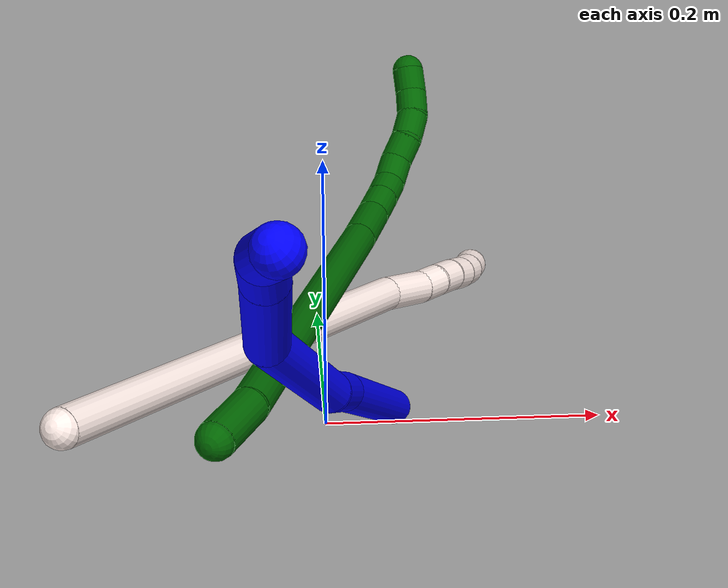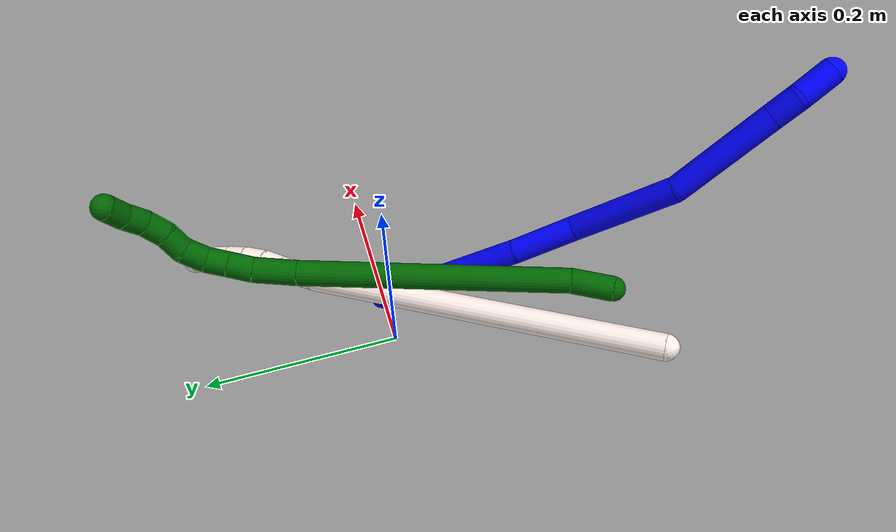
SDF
<sdf version="1.7">
 <world name="default">
  <model name="photoneo_s_sensor">
   <static>1</static>
   <pose>0 0 2 1.57079 1.57079 3.14159</pose>
   <link name="link">
    <inertial><mass>0.1</mass></inertial>
    <sensor name="sensor" type="depth">
     <update_rate>30</update_rate>
     <camera>
      <horizontal_fov>1.22</horizontal_fov>
      <image><width>1920</width><height>1200</height><format>B8G8R8</format></image>
      <clip><near>0.1</near><far>4</far></clip>
      <depth_camera><output>points</output></depth_camera>
     </camera>
     <plugin name="camera_plugin" filename="libgazebo_ros_depth_camera.so">
      <baseline>0.2</baseline>
      <alwaysOn>1</alwaysOn>
      <updateRate>0.0</updateRate>
      <cameraName>camera_ir</cameraName>
      <imageTopicName>/camera/color/image_raw</imageTopicName>
      <cameraInfoTopicName>/camera/color/camera_info</cameraInfoTopicName>
      <depthImageTopicName>/camera/depth/image_raw</depthImageTopicName>
      <depthImageCameraInfoTopicName>/camera/depth/camera_info</depthImageCameraInfoTopicName>
      <pointCloudTopicName>/camera/depth/points</pointCloudTopicName>
      <frameName>fr_optical</frameName>
      <pointCloudCutoff>0.1</pointCloudCutoff>
      <pointCloudCutoffMax>2.0</pointCloudCutoffMax>
      <distortionK1>0</distortionK1>
      <distortionK2>0</distortionK2>
      <distortionK3>0</distortionK3>
      <distortionT1>0</distortionT1>
      <distortionT2>0</distortionT2>
      <CxPrime>0</CxPrime>
      <Cx>0</Cx>
      <Cy>0</Cy>
      <focalLength>0</focalLength>
      <hackBaseline>0</hackBaseline>
     </plugin>
    </sensor>
   </link>
  </model>
  <model name="bin">
   <static>1</static>
   <link name="bottom">
    <collision name="collision-bottom">
     <pose>0 0 -0.01 0 -0 0</pose>
     <geometry><box><size>0.8 0.6 0.02</size></box></geometry>
     <surface>
      <friction><ode><mu>100</mu><mu2>100</mu2></ode></friction>
      <contact><collide_bitmask>65535</collide_bitmask></contact>
     </surface>
    </collision>
   </link>
   <link name="west_wall">
    <collision name="collision-west_wall">
     <pose>-0.41 0 0.1 0 -0 0</pose>
     <geometry><box><size>0.02 0.6 0.2</size></box></geometry>
     <surface>
      <friction><ode><mu>100</mu><mu2>100</mu2></ode></friction>
      <contact><collide_bitmask>65535</collide_bitmask></contact>
     </surface>
    </collision>
   </link>
   <link name="east_wall">
    <collision name="collision-east_wall">
     <pose>0.41 0 0.1 0 -0 0</pose>
     <geometry><box><size>0.02 0.6 0.2</size></box></geometry>
     <surface>
      <friction><ode><mu>100</mu><mu2>100</mu2></ode></friction>
      <contact><collide_bitmask>65535</collide_bitmask></contact>
     </surface>
    </collision>
   </link>
   <link name="south_wall">
    <collision name="collision-south_wall">
     <pose>0 -0.31 0.1 0 -0 0</pose>
     <geometry><box><size>0.8 0.02 0.2</size></box></geometry>
     <surface>
      <friction><ode><mu>100</mu><mu2>100</mu2></ode></friction>
      <contact><collide_bitmask>65535</collide_bitmask></contact>
     </surface>
    </collision>
   </link>
   <link name="north_wall">
    <collision name="collision-north_wall">
     <pose>0 0.31 0.1 0 -0 0</pose>
     <geometry><box><size>0.8 0.02 0.2</size></box></geometry>
     <surface>
      <friction><ode><mu>100</mu><mu2>100</mu2></ode></friction>
      <contact><collide_bitmask>65535</collide_bitmask></contact>
     </surface>
    </collision>
   </link>
  </model>
  <model name="1">
   <static>0</static>
   <link name="1">
    <collision name="collision-cylinder-e_1_1_4">
     <pose>-0.00431 -0.025804 0.076562 0.325081 -0.053291 -0.008741</pose>
     <geometry><cylinder><radius>0.0125</radius><length>0.161817</length></cylinder></geometry>
     <surface>
      <friction><ode><mu>1.16</mu><mu2>1.16</mu2><slip1>0</slip1><slip2>0</slip2></ode></friction>
      <contact><ode><kp>1e+06</kp><kd>1</kd><max_vel>0</max_vel><min_depth>0.001</min_depth></ode></contact>
     </surface>
    </collision>
    <visual name="visual-cylinder-e_1_1_4">
     <pose>-0.00431 -0.025804 0.076562 0.325081 -0.053291 -0.008741</pose>
     <geometry><cylinder><radius>0.0125</radius><length>0.161817</length></cylinder></geometry>
     <material><ambient>0 0 1 1</ambient></material>
    </visual>
    <collision name="collision-cylinder-e_2_4_5">
     <pose>-0.008699 -0.065296 0.182455 0.436613 -0.002466 -0.000547</pose>
     <geometry><cylinder><radius>0.0125</radius><length>0.064734</length></cylinder></geometry>
     <surface>
      <friction><ode><mu>1.16</mu><mu2>1.16</mu2><slip1>0</slip1><slip2>0</slip2></ode></friction>
      <contact><ode><kp>1e+06</kp><kd>1</kd><max_vel>0</max_vel><min_depth>0.001</min_depth></ode></contact>
     </surface>
    </collision>
    <visual name="visual-cylinder-e_2_4_5">
     <pose>-0.008699 -0.065296 0.182455 0.436613 -0.002466 -0.000547</pose>
     <geometry><cylinder><radius>0.0125</radius><length>0.064734</length></cylinder></geometry>
     <material><ambient>0 0 1 1</ambient></material>
    </visual>
    <collision name="collision-cylinder-e_3_5_6">
     <pose>-0.010651 -0.087103 0.265995 0.14868 -0.034134 -0.002542</pose>
     <geometry><cylinder><radius>0.0125</radius><length>0.109693</length></cylinder></geometry>
     <surface>
      <friction><ode><mu>1.16</mu><mu2>1.16</mu2><slip1>0</slip1><slip2>0</slip2></ode></friction>
      <contact><ode><kp>1e+06</kp><kd>1</kd><max_vel>0</max_vel><min_depth>0.001</min_depth></ode></contact>
     </surface>
    </collision>
    <visual name="visual-cylinder-e_3_5_6">
     <pose>-0.010651 -0.087103 0.265995 0.14868 -0.034134 -0.002542</pose>
     <geometry><cylinder><radius>0.0125</radius><length>0.109693</length></cylinder></geometry>
     <material><ambient>0 0 1 1</ambient></material>
    </visual>
    <collision name="collision-cylinder-e_4_6_7">
     <pose>0.000958 -0.109818 0.36773 0.297973 0.264778 0.039971</pose>
     <geometry><cylinder><radius>0.0125</radius><length>0.103022</length></cylinder></geometry>
     <surface>
      <friction><ode><mu>1.16</mu><mu2>1.16</mu2><slip1>0</slip1><slip2>0</slip2></ode></friction>
      <contact><ode><kp>1e+06</kp><kd>1</kd><max_vel>0</max_vel><min_depth>0.001</min_depth></ode></contact>
     </surface>
    </collision>
    <visual name="visual-cylinder-e_4_6_7">
     <pose>0.000958 -0.109818 0.36773 0.297973 0.264778 0.039971</pose>
     <geometry><cylinder><radius>0.0125</radius><length>0.103022</length></cylinder></geometry>
     <material><ambient>0 0 1 1</ambient></material>
    </visual>
    <collision name="collision-cylinder-e_5_7_8">
     <pose>0.017662 -0.127468 0.427609 0.24238 0.248125 0.030372</pose>
     <geometry><cylinder><radius>0.0125</radius><length>0.026255</length></cylinder></geometry>
     <surface>
      <friction><ode><mu>1.16</mu><mu2>1.16</mu2><slip1>0</slip1><slip2>0</slip2></ode></friction>
      <contact><ode><kp>1e+06</kp><kd>1</kd><max_vel>0</max_vel><min_depth>0.001</min_depth></ode></contact>
     </surface>
    </collision>
    <visual name="visual-cylinder-e_5_7_8">
     <pose>0.017662 -0.127468 0.427609 0.24238 0.248125 0.030372</pose>
     <geometry><cylinder><radius>0.0125</radius><length>0.026255</length></cylinder></geometry>
     <material><ambient>0 0 1 1</ambient></material>
    </visual>
    <collision name="collision-cylinder-e_6_8_2">
     <pose>0.02616 -0.140049 0.453328 0.619227 0.310947 0.100198</pose>
     <geometry><cylinder><radius>0.0125</radius><length>0.034478</length></cylinder></geometry>
     <surface>
      <friction><ode><mu>1.16</mu><mu2>1.16</mu2><slip1>0</slip1><slip2>0</slip2></ode></friction>
      <contact><ode><kp>1e+06</kp><kd>1</kd><max_vel>0</max_vel><min_depth>0.001</min_depth></ode></contact>
     </surface>
    </collision>
    <visual name="visual-cylinder-e_6_8_2">
     <pose>0.02616 -0.140049 0.453328 0.619227 0.310947 0.100198</pose>
     <geometry><cylinder><radius>0.0125</radius><length>0.034478</length></cylinder></geometry>
     <material><ambient>0 0 1 1</ambient></material>
    </visual>
    <collision name="collision-sphere-2">
     <pose>0.031435 -0.149574 0.466693 0 -0 0</pose>
     <geometry><sphere><radius>0.0125</radius></sphere></geometry>
     <surface>
      <friction><ode><mu>1.16</mu><mu2>1.16</mu2><slip1>0</slip1><slip2>0</slip2></ode></friction>
      <contact><ode><kp>1e+06</kp><kd>1</kd><max_vel>0</max_vel><min_depth>0.001</min_depth></ode></contact>
     </surface>
    </collision>
    <visual name="visual-sphere-2">
     <pose>0.031435 -0.149574 0.466693 0 -0 0</pose>
     <geometry><sphere><radius>0.0125</radius></sphere></geometry>
     <material><ambient>0 0 1 1</ambient></material>
    </visual>
    <collision name="collision-sphere-4">
     <pose>-0.008619 -0.051609 0.153124 0 -0 0</pose>
     <geometry><sphere><radius>0.0125</radius></sphere></geometry>
     <surface>
      <friction><ode><mu>1.16</mu><mu2>1.16</mu2><slip1>0</slip1><slip2>0</slip2></ode></friction>
      <contact><ode><kp>1e+06</kp><kd>1</kd><max_vel>0</max_vel><min_depth>0.001</min_depth></ode></contact>
     </surface>
    </collision>
    <visual name="visual-sphere-4">
     <pose>-0.008619 -0.051609 0.153124 0 -0 0</pose>
     <geometry><sphere><radius>0.0125</radius></sphere></geometry>
     <material><ambient>0 0 1 1</ambient></material>
    </visual>
    <collision name="collision-sphere-1">
     <geometry><sphere><radius>0.0125</radius></sphere></geometry>
     <surface>
      <friction><ode><mu>1.16</mu><mu2>1.16</mu2><slip1>0</slip1><slip2>0</slip2></ode></friction>
      <contact><ode><kp>1e+06</kp><kd>1</kd><max_vel>0</max_vel><min_depth>0.001</min_depth></ode></contact>
     </surface>
    </collision>
    <visual name="visual-sphere-1">
     <geometry><sphere><radius>0.0125</radius></sphere></geometry>
     <material><ambient>0 0 1 1</ambient></material>
    </visual>
    <collision name="collision-sphere-8">
     <pose>0.020886 -0.130523 0.439962 0 -0 0</pose>
     <geometry><sphere><radius>0.0125</radius></sphere></geometry>
     <surface>
      <friction><ode><mu>1.16</mu><mu2>1.16</mu2><slip1>0</slip1><slip2>0</slip2></ode></friction>
      <contact><ode><kp>1e+06</kp><kd>1</kd><max_vel>0</max_vel><min_depth>0.001</min_depth></ode></contact>
     </surface>
    </collision>
    <visual name="visual-sphere-8">
     <pose>0.020886 -0.130523 0.439962 0 -0 0</pose>
     <geometry><sphere><radius>0.0125</radius></sphere></geometry>
     <material><ambient>0 0 1 1</ambient></material>
    </visual>
    <collision name="collision-sphere-5">
     <pose>-0.008779 -0.078983 0.211785 0 -0 0</pose>
     <geometry><sphere><radius>0.0125</radius></sphere></geometry>
     <surface>
      <friction><ode><mu>1.16</mu><mu2>1.16</mu2><slip1>0</slip1><slip2>0</slip2></ode></friction>
      <contact><ode><kp>1e+06</kp><kd>1</kd><max_vel>0</max_vel><min_depth>0.001</min_depth></ode></contact>
     </surface>
    </collision>
    <visual name="visual-sphere-5">
     <pose>-0.008779 -0.078983 0.211785 0 -0 0</pose>
     <geometry><sphere><radius>0.0125</radius></sphere></geometry>
     <material><ambient>0 0 1 1</ambient></material>
    </visual>
    <collision name="collision-sphere-6">
     <pose>-0.012523 -0.095222 0.320205 0 -0 0</pose>
     <geometry><sphere><radius>0.0125</radius></sphere></geometry>
     <surface>
      <friction><ode><mu>1.16</mu><mu2>1.16</mu2><slip1>0</slip1><slip2>0</slip2></ode></friction>
      <contact><ode><kp>1e+06</kp><kd>1</kd><max_vel>0</max_vel><min_depth>0.001</min_depth></ode></contact>
     </surface>
    </collision>
    <visual name="visual-sphere-6">
     <pose>-0.012523 -0.095222 0.320205 0 -0 0</pose>
     <geometry><sphere><radius>0.0125</radius></sphere></geometry>
     <material><ambient>0 0 1 1</ambient></material>
    </visual>
    <collision name="collision-sphere-7">
     <pose>0.014438 -0.124414 0.415255 0 -0 0</pose>
     <geometry><sphere><radius>0.0125</radius></sphere></geometry>
     <surface>
      <friction><ode><mu>1.16</mu><mu2>1.16</mu2><slip1>0</slip1><slip2>0</slip2></ode></friction>
      <contact><ode><kp>1e+06</kp><kd>1</kd><max_vel>0</max_vel><min_depth>0.001</min_depth></ode></contact>
     </surface>
    </collision>
    <visual name="visual-sphere-7">
     <pose>0.014438 -0.124414 0.415255 0 -0 0</pose>
     <geometry><sphere><radius>0.0125</radius></sphere></geometry>
     <material><ambient>0 0 1 1</ambient></material>
    </visual>
    <inertial>
     <pose>-0.001929 -0.074892 0.236239 0 -0 0</pose>
     <mass>0.5</mass>
     <inertia><ixx>0.0006</ixx><ixy>0</ixy><ixz>0</ixz><iyy>0.000563</iyy><iyz>0</iyz><izz>0.000205</izz></inertia>
    </inertial>
   </link>
   <pose>0.049012 0.001497 0.011442 0.593682 -0.531475 0.116836</pose>
  </model>
  <model name="6">
   <static>0</static>
   <link name="6">
    <collision name="collision-cylinder-e_1_1_4">
     <pose>-0.001852 -0.000443 0.020782 0.02132 -0.088876 -0.000948</pose>
     <geometry><cylinder><radius>0.0125</radius><length>0.041738</length></cylinder></geometry>
     <surface>
      <friction><ode><mu>1.16</mu><mu2>1.16</mu2><slip1>0</slip1><slip2>0</slip2></ode></friction>
      <contact><ode><kp>1e+06</kp><kd>1</kd><max_vel>0</max_vel><min_depth>0.001</min_depth></ode></contact>
     </surface>
    </collision>
    <visual name="visual-cylinder-e_1_1_4">
     <pose>-0.001852 -0.000443 0.020782 0.02132 -0.088876 -0.000948</pose>
     <geometry><cylinder><radius>0.0125</radius><length>0.041738</length></cylinder></geometry>
     <material><ambient>0 0.392157 0.003922 1</ambient></material>
    </visual>
    <collision name="collision-cylinder-e_2_4_5">
     <pose>-0.001761 0.015461 0.172761 -0.12396 0.014702 -0.000912</pose>
     <geometry><cylinder><radius>0.0125</radius><length>0.264453</length></cylinder></geometry>
     <surface>
      <friction><ode><mu>1.16</mu><mu2>1.16</mu2><slip1>0</slip1><slip2>0</slip2></ode></friction>
      <contact><ode><kp>1e+06</kp><kd>1</kd><max_vel>0</max_vel><min_depth>0.001</min_depth></ode></contact>
     </surface>
    </collision>
    <visual name="visual-cylinder-e_2_4_5">
     <pose>-0.001761 0.015461 0.172761 -0.12396 0.014702 -0.000912</pose>
     <geometry><cylinder><radius>0.0125</radius><length>0.264453</length></cylinder></geometry>
     <material><ambient>0 0.392157 0.003922 1</ambient></material>
    </visual>
    <collision name="collision-cylinder-e_3_5_6">
     <pose>-0.000779 0.034848 0.324649 -0.145892 -0.045989 0.003361</pose>
     <geometry><cylinder><radius>0.0125</radius><length>0.041869</length></cylinder></geometry>
     <surface>
      <friction><ode><mu>1.16</mu><mu2>1.16</mu2><slip1>0</slip1><slip2>0</slip2></ode></friction>
      <contact><ode><kp>1e+06</kp><kd>1</kd><max_vel>0</max_vel><min_depth>0.001</min_depth></ode></contact>
     </surface>
    </collision>
    <visual name="visual-cylinder-e_3_5_6">
     <pose>-0.000779 0.034848 0.324649 -0.145892 -0.045989 0.003361</pose>
     <geometry><cylinder><radius>0.0125</radius><length>0.041869</length></cylinder></geometry>
     <material><ambient>0 0.392157 0.003922 1</ambient></material>
    </visual>
    <collision name="collision-cylinder-e_4_6_7">
     <pose>-0.004383 0.039637 0.357111 -0.147477 -0.218453 0.016202</pose>
     <geometry><cylinder><radius>0.0125</radius><length>0.024382</length></cylinder></geometry>
     <surface>
      <friction><ode><mu>1.16</mu><mu2>1.16</mu2><slip1>0</slip1><slip2>0</slip2></ode></friction>
      <contact><ode><kp>1e+06</kp><kd>1</kd><max_vel>0</max_vel><min_depth>0.001</min_depth></ode></contact>
     </surface>
    </collision>
    <visual name="visual-cylinder-e_4_6_7">
     <pose>-0.004383 0.039637 0.357111 -0.147477 -0.218453 0.016202</pose>
     <geometry><cylinder><radius>0.0125</radius><length>0.024382</length></cylinder></geometry>
     <material><ambient>0 0.392157 0.003922 1</ambient></material>
    </visual>
    <collision name="collision-cylinder-e_5_7_8">
     <pose>-0.009257 0.043101 0.379011 -0.167763 -0.213876 0.018051</pose>
     <geometry><cylinder><radius>0.0125</radius><length>0.021024</length></cylinder></geometry>
     <surface>
      <friction><ode><mu>1.16</mu><mu2>1.16</mu2><slip1>0</slip1><slip2>0</slip2></ode></friction>
      <contact><ode><kp>1e+06</kp><kd>1</kd><max_vel>0</max_vel><min_depth>0.001</min_depth></ode></contact>
     </surface>
    </collision>
    <visual name="visual-cylinder-e_5_7_8">
     <pose>-0.009257 0.043101 0.379011 -0.167763 -0.213876 0.018051</pose>
     <geometry><cylinder><radius>0.0125</radius><length>0.021024</length></cylinder></geometry>
     <material><ambient>0 0.392157 0.003922 1</ambient></material>
    </visual>
    <collision name="collision-cylinder-e_6_8_9">
     <pose>-0.01721 0.047905 0.398634 -0.314496 -0.520422 0.084381</pose>
     <geometry><cylinder><radius>0.0125</radius><length>0.023016</length></cylinder></geometry>
     <surface>
      <friction><ode><mu>1.16</mu><mu2>1.16</mu2><slip1>0</slip1><slip2>0</slip2></ode></friction>
      <contact><ode><kp>1e+06</kp><kd>1</kd><max_vel>0</max_vel><min_depth>0.001</min_depth></ode></contact>
     </surface>
    </collision>
    <visual name="visual-cylinder-e_6_8_9">
     <pose>-0.01721 0.047905 0.398634 -0.314496 -0.520422 0.084381</pose>
     <geometry><cylinder><radius>0.0125</radius><length>0.023016</length></cylinder></geometry>
     <material><ambient>0 0.392157 0.003922 1</ambient></material>
    </visual>
    <collision name="collision-cylinder-e_7_9_10">
     <pose>-0.031011 0.052319 0.414816 -0.195619 -0.869866 0.091113</pose>
     <geometry><cylinder><radius>0.0125</radius><length>0.021141</length></cylinder></geometry>
     <surface>
      <friction><ode><mu>1.16</mu><mu2>1.16</mu2><slip1>0</slip1><slip2>0</slip2></ode></friction>
      <contact><ode><kp>1e+06</kp><kd>1</kd><max_vel>0</max_vel><min_depth>0.001</min_depth></ode></contact>
     </surface>
    </collision>
    <visual name="visual-cylinder-e_7_9_10">
     <pose>-0.031011 0.052319 0.414816 -0.195619 -0.869866 0.091113</pose>
     <geometry><cylinder><radius>0.0125</radius><length>0.021141</length></cylinder></geometry>
     <material><ambient>0 0.392157 0.003922 1</ambient></material>
    </visual>
    <collision name="collision-cylinder-e_8_10_11">
     <pose>-0.045719 0.056933 0.429512 -0.389751 -0.653514 0.133588</pose>
     <geometry><cylinder><radius>0.0125</radius><length>0.021809</length></cylinder></geometry>
     <surface>
      <friction><ode><mu>1.16</mu><mu2>1.16</mu2><slip1>0</slip1><slip2>0</slip2></ode></friction>
      <contact><ode><kp>1e+06</kp><kd>1</kd><max_vel>0</max_vel><min_depth>0.001</min_depth></ode></contact>
     </surface>
    </collision>
    <visual name="visual-cylinder-e_8_10_11">
     <pose>-0.045719 0.056933 0.429512 -0.389751 -0.653514 0.133588</pose>
     <geometry><cylinder><radius>0.0125</radius><length>0.021809</length></cylinder></geometry>
     <material><ambient>0 0.392157 0.003922 1</ambient></material>
    </visual>
    <collision name="collision-cylinder-e_9_11_12">
     <pose>-0.057641 0.065925 0.444101 -0.714009 -0.546078 0.208142</pose>
     <geometry><cylinder><radius>0.0125</radius><length>0.020379</length></cylinder></geometry>
     <surface>
      <friction><ode><mu>1.16</mu><mu2>1.16</mu2><slip1>0</slip1><slip2>0</slip2></ode></friction>
      <contact><ode><kp>1e+06</kp><kd>1</kd><max_vel>0</max_vel><min_depth>0.001</min_depth></ode></contact>
     </surface>
    </collision>
    <visual name="visual-cylinder-e_9_11_12">
     <pose>-0.057641 0.065925 0.444101 -0.714009 -0.546078 0.208142</pose>
     <geometry><cylinder><radius>0.0125</radius><length>0.020379</length></cylinder></geometry>
     <material><ambient>0 0.392157 0.003922 1</ambient></material>
    </visual>
    <collision name="collision-cylinder-e_10_12_2">
     <pose>-0.06947 0.077883 0.455158 -0.949648 -0.704453 0.373479</pose>
     <geometry><cylinder><radius>0.0125</radius><length>0.02019</length></cylinder></geometry>
     <surface>
      <friction><ode><mu>1.16</mu><mu2>1.16</mu2><slip1>0</slip1><slip2>0</slip2></ode></friction>
      <contact><ode><kp>1e+06</kp><kd>1</kd><max_vel>0</max_vel><min_depth>0.001</min_depth></ode></contact>
     </surface>
    </collision>
    <visual name="visual-cylinder-e_10_12_2">
     <pose>-0.06947 0.077883 0.455158 -0.949648 -0.704453 0.373479</pose>
     <geometry><cylinder><radius>0.0125</radius><length>0.02019</length></cylinder></geometry>
     <material><ambient>0 0.392157 0.003922 1</ambient></material>
    </visual>
    <collision name="collision-sphere-2">
     <pose>-0.076008 0.084138 0.459634 0 -0 0</pose>
     <geometry><sphere><radius>0.0125</radius></sphere></geometry>
     <surface>
      <friction><ode><mu>1.16</mu><mu2>1.16</mu2><slip1>0</slip1><slip2>0</slip2></ode></friction>
      <contact><ode><kp>1e+06</kp><kd>1</kd><max_vel>0</max_vel><min_depth>0.001</min_depth></ode></contact>
     </surface>
    </collision>
    <visual name="visual-sphere-2">
     <pose>-0.076008 0.084138 0.459634 0 -0 0</pose>
     <geometry><sphere><radius>0.0125</radius></sphere></geometry>
     <material><ambient>0 0.392157 0.003922 1</ambient></material>
    </visual>
    <collision name="collision-sphere-12">
     <pose>-0.062932 0.071627 0.450681 0 -0 0</pose>
     <geometry><sphere><radius>0.0125</radius></sphere></geometry>
     <surface>
      <friction><ode><mu>1.16</mu><mu2>1.16</mu2><slip1>0</slip1><slip2>0</slip2></ode></friction>
      <contact><ode><kp>1e+06</kp><kd>1</kd><max_vel>0</max_vel><min_depth>0.001</min_depth></ode></contact>
     </surface>
    </collision>
    <visual name="visual-sphere-12">
     <pose>-0.062932 0.071627 0.450681 0 -0 0</pose>
     <geometry><sphere><radius>0.0125</radius></sphere></geometry>
     <material><ambient>0 0.392157 0.003922 1</ambient></material>
    </visual>
    <collision name="collision-sphere-11">
     <pose>-0.052349 0.060223 0.43752 0 -0 0</pose>
     <geometry><sphere><radius>0.0125</radius></sphere></geometry>
     <surface>
      <friction><ode><mu>1.16</mu><mu2>1.16</mu2><slip1>0</slip1><slip2>0</slip2></ode></friction>
      <contact><ode><kp>1e+06</kp><kd>1</kd><max_vel>0</max_vel><min_depth>0.001</min_depth></ode></contact>
     </surface>
    </collision>
    <visual name="visual-sphere-11">
     <pose>-0.052349 0.060223 0.43752 0 -0 0</pose>
     <geometry><sphere><radius>0.0125</radius></sphere></geometry>
     <material><ambient>0 0.392157 0.003922 1</ambient></material>
    </visual>
    <collision name="collision-sphere-10">
     <pose>-0.039089 0.053644 0.421503 0 -0 0</pose>
     <geometry><sphere><radius>0.0125</radius></sphere></geometry>
     <surface>
      <friction><ode><mu>1.16</mu><mu2>1.16</mu2><slip1>0</slip1><slip2>0</slip2></ode></friction>
      <contact><ode><kp>1e+06</kp><kd>1</kd><max_vel>0</max_vel><min_depth>0.001</min_depth></ode></contact>
     </surface>
    </collision>
    <visual name="visual-sphere-10">
     <pose>-0.039089 0.053644 0.421503 0 -0 0</pose>
     <geometry><sphere><radius>0.0125</radius></sphere></geometry>
     <material><ambient>0 0.392157 0.003922 1</ambient></material>
    </visual>
    <collision name="collision-sphere-9">
     <pose>-0.022933 0.050993 0.408129 0 -0 0</pose>
     <geometry><sphere><radius>0.0125</radius></sphere></geometry>
     <surface>
      <friction><ode><mu>1.16</mu><mu2>1.16</mu2><slip1>0</slip1><slip2>0</slip2></ode></friction>
      <contact><ode><kp>1e+06</kp><kd>1</kd><max_vel>0</max_vel><min_depth>0.001</min_depth></ode></contact>
     </surface>
    </collision>
    <visual name="visual-sphere-9">
     <pose>-0.022933 0.050993 0.408129 0 -0 0</pose>
     <geometry><sphere><radius>0.0125</radius></sphere></geometry>
     <material><ambient>0 0.392157 0.003922 1</ambient></material>
    </visual>
    <collision name="collision-sphere-4">
     <pose>-0.003705 -0.000886 0.041563 0 -0 0</pose>
     <geometry><sphere><radius>0.0125</radius></sphere></geometry>
     <surface>
      <friction><ode><mu>1.16</mu><mu2>1.16</mu2><slip1>0</slip1><slip2>0</slip2></ode></friction>
      <contact><ode><kp>1e+06</kp><kd>1</kd><max_vel>0</max_vel><min_depth>0.001</min_depth></ode></contact>
     </surface>
    </collision>
    <visual name="visual-sphere-4">
     <pose>-0.003705 -0.000886 0.041563 0 -0 0</pose>
     <geometry><sphere><radius>0.0125</radius></sphere></geometry>
     <material><ambient>0 0.392157 0.003922 1</ambient></material>
    </visual>
    <collision name="collision-sphere-1">
     <geometry><sphere><radius>0.0125</radius></sphere></geometry>
     <surface>
      <friction><ode><mu>1.16</mu><mu2>1.16</mu2><slip1>0</slip1><slip2>0</slip2></ode></friction>
      <contact><ode><kp>1e+06</kp><kd>1</kd><max_vel>0</max_vel><min_depth>0.001</min_depth></ode></contact>
     </surface>
    </collision>
    <visual name="visual-sphere-1">
     <geometry><sphere><radius>0.0125</radius></sphere></geometry>
     <material><ambient>0 0.392157 0.003922 1</ambient></material>
    </visual>
    <collision name="collision-sphere-8">
     <pose>-0.011488 0.044816 0.389139 0 -0 0</pose>
     <geometry><sphere><radius>0.0125</radius></sphere></geometry>
     <surface>
      <friction><ode><mu>1.16</mu><mu2>1.16</mu2><slip1>0</slip1><slip2>0</slip2></ode></friction>
      <contact><ode><kp>1e+06</kp><kd>1</kd><max_vel>0</max_vel><min_depth>0.001</min_depth></ode></contact>
     </surface>
    </collision>
    <visual name="visual-sphere-8">
     <pose>-0.011488 0.044816 0.389139 0 -0 0</pose>
     <geometry><sphere><radius>0.0125</radius></sphere></geometry>
     <material><ambient>0 0.392157 0.003922 1</ambient></material>
    </visual>
    <collision name="collision-sphere-5">
     <pose>0.000183 0.031808 0.303958 0 -0 0</pose>
     <geometry><sphere><radius>0.0125</radius></sphere></geometry>
     <surface>
      <friction><ode><mu>1.16</mu><mu2>1.16</mu2><slip1>0</slip1><slip2>0</slip2></ode></friction>
      <contact><ode><kp>1e+06</kp><kd>1</kd><max_vel>0</max_vel><min_depth>0.001</min_depth></ode></contact>
     </surface>
    </collision>
    <visual name="visual-sphere-5">
     <pose>0.000183 0.031808 0.303958 0 -0 0</pose>
     <geometry><sphere><radius>0.0125</radius></sphere></geometry>
     <material><ambient>0 0.392157 0.003922 1</ambient></material>
    </visual>
    <collision name="collision-sphere-6">
     <pose>-0.001741 0.037888 0.345339 0 -0 0</pose>
     <geometry><sphere><radius>0.0125</radius></sphere></geometry>
     <surface>
      <friction><ode><mu>1.16</mu><mu2>1.16</mu2><slip1>0</slip1><slip2>0</slip2></ode></friction>
      <contact><ode><kp>1e+06</kp><kd>1</kd><max_vel>0</max_vel><min_depth>0.001</min_depth></ode></contact>
     </surface>
    </collision>
    <visual name="visual-sphere-6">
     <pose>-0.001741 0.037888 0.345339 0 -0 0</pose>
     <geometry><sphere><radius>0.0125</radius></sphere></geometry>
     <material><ambient>0 0.392157 0.003922 1</ambient></material>
    </visual>
    <collision name="collision-sphere-7">
     <pose>-0.007025 0.041386 0.368883 0 -0 0</pose>
     <geometry><sphere><radius>0.0125</radius></sphere></geometry>
     <surface>
      <friction><ode><mu>1.16</mu><mu2>1.16</mu2><slip1>0</slip1><slip2>0</slip2></ode></friction>
      <contact><ode><kp>1e+06</kp><kd>1</kd><max_vel>0</max_vel><min_depth>0.001</min_depth></ode></contact>
     </surface>
    </collision>
    <visual name="visual-sphere-7">
     <pose>-0.007025 0.041386 0.368883 0 -0 0</pose>
     <geometry><sphere><radius>0.0125</radius></sphere></geometry>
     <material><ambient>0 0.392157 0.003922 1</ambient></material>
    </visual>
    <inertial>
     <pose>-0.011006 0.027536 0.244749 0 -0 0</pose>
     <mass>0.5</mass>
     <inertia>
      <ixx>0.001571</ixx>
      <ixy>0</ixy>
      <ixz>0</ixz>
      <iyy>0.001572</iyy>
      <iyz>0</iyz>
      <izz>-0.000176</izz>
     </inertia>
    </inertial>
   </link>
   <pose>-0.070026 -0.205481 0.099357 1.57821 1.14718 2.72278</pose>
  </model>
  <model name="11">
   <static>0</static>
   <link name="11">
    <collision name="collision-cylinder-e_1_1_4">
     <pose>0.057935 0.047353 -0.160995 -2.85553 0.332418 -1.72281</pose>
     <geometry><cylinder><radius>0.0125</radius><length>0.355068</length></cylinder></geometry>
     <surface>
      <friction><ode><mu>1.16</mu><mu2>1.16</mu2><slip1>0</slip1><slip2>0</slip2></ode></friction>
      <contact><ode><kp>1e+06</kp><kd>1</kd><max_vel>0</max_vel><min_depth>0.001</min_depth></ode></contact>
     </surface>
    </collision>
    <visual name="visual-cylinder-e_1_1_4">
     <pose>0.057935 0.047353 -0.160995 -2.85553 0.332418 -1.72281</pose>
     <geometry><cylinder><radius>0.0125</radius><length>0.355068</length></cylinder></geometry>
     <material><ambient>1 0.933333 0.909804 1</ambient></material>
    </visual>
    <collision name="collision-cylinder-e_2_4_5">
     <pose>0.124605 0.097587 -0.339988 -2.98286 0.446947 -2.46834</pose>
     <geometry><cylinder><radius>0.0125</radius><length>0.040423</length></cylinder></geometry>
     <surface>
      <friction><ode><mu>1.16</mu><mu2>1.16</mu2><slip1>0</slip1><slip2>0</slip2></ode></friction>
      <contact><ode><kp>1e+06</kp><kd>1</kd><max_vel>0</max_vel><min_depth>0.001</min_depth></ode></contact>
     </surface>
    </collision>
    <visual name="visual-cylinder-e_2_4_5">
     <pose>0.124605 0.097587 -0.339988 -2.98286 0.446947 -2.46834</pose>
     <geometry><cylinder><radius>0.0125</radius><length>0.040423</length></cylinder></geometry>
     <material><ambient>1 0.933333 0.909804 1</ambient></material>
    </visual>
    <collision name="collision-cylinder-e_3_5_6">
     <pose>0.138204 0.103188 -0.367048 -2.85002 0.474784 -2.05073</pose>
     <geometry><cylinder><radius>0.0125</radius><length>0.021279</length></cylinder></geometry>
     <surface>
      <friction><ode><mu>1.16</mu><mu2>1.16</mu2><slip1>0</slip1><slip2>0</slip2></ode></friction>
      <contact><ode><kp>1e+06</kp><kd>1</kd><max_vel>0</max_vel><min_depth>0.001</min_depth></ode></contact>
     </surface>
    </collision>
    <visual name="visual-cylinder-e_3_5_6">
     <pose>0.138204 0.103188 -0.367048 -2.85002 0.474784 -2.05073</pose>
     <geometry><cylinder><radius>0.0125</radius><length>0.021279</length></cylinder></geometry>
     <material><ambient>1 0.933333 0.909804 1</ambient></material>
    </visual>
    <collision name="collision-cylinder-e_4_6_7">
     <pose>0.146758 0.10876 -0.386591 -2.87589 0.327491 -1.7814</pose>
     <geometry><cylinder><radius>0.0125</radius><length>0.022939</length></cylinder></geometry>
     <surface>
      <friction><ode><mu>1.16</mu><mu2>1.16</mu2><slip1>0</slip1><slip2>0</slip2></ode></friction>
      <contact><ode><kp>1e+06</kp><kd>1</kd><max_vel>0</max_vel><min_depth>0.001</min_depth></ode></contact>
     </surface>
    </collision>
    <visual name="visual-cylinder-e_4_6_7">
     <pose>0.146758 0.10876 -0.386591 -2.87589 0.327491 -1.7814</pose>
     <geometry><cylinder><radius>0.0125</radius><length>0.022939</length></cylinder></geometry>
     <material><ambient>1 0.933333 0.909804 1</ambient></material>
    </visual>
    <collision name="collision-cylinder-e_5_7_8">
     <pose>0.152545 0.113614 -0.406741 -2.93743 0.209265 -1.59564</pose>
     <geometry><cylinder><radius>0.0125</radius><length>0.020193</length></cylinder></geometry>
     <surface>
      <friction><ode><mu>1.16</mu><mu2>1.16</mu2><slip1>0</slip1><slip2>0</slip2></ode></friction>
      <contact><ode><kp>1e+06</kp><kd>1</kd><max_vel>0</max_vel><min_depth>0.001</min_depth></ode></contact>
     </surface>
    </collision>
    <visual name="visual-cylinder-e_5_7_8">
     <pose>0.152545 0.113614 -0.406741 -2.93743 0.209265 -1.59564</pose>
     <geometry><cylinder><radius>0.0125</radius><length>0.020193</length></cylinder></geometry>
     <material><ambient>1 0.933333 0.909804 1</ambient></material>
    </visual>
    <collision name="collision-cylinder-e_6_8_9">
     <pose>0.155867 0.118432 -0.425948 -2.85452 0.1226 -0.803178</pose>
     <geometry><cylinder><radius>0.0125</radius><length>0.020036</length></cylinder></geometry>
     <surface>
      <friction><ode><mu>1.16</mu><mu2>1.16</mu2><slip1>0</slip1><slip2>0</slip2></ode></friction>
      <contact><ode><kp>1e+06</kp><kd>1</kd><max_vel>0</max_vel><min_depth>0.001</min_depth></ode></contact>
     </surface>
    </collision>
    <visual name="visual-cylinder-e_6_8_9">
     <pose>0.155867 0.118432 -0.425948 -2.85452 0.1226 -0.803178</pose>
     <geometry><cylinder><radius>0.0125</radius><length>0.020036</length></cylinder></geometry>
     <material><ambient>1 0.933333 0.909804 1</ambient></material>
    </visual>
    <collision name="collision-cylinder-e_7_9_2">
     <pose>0.157124 0.124954 -0.444804 -2.76303 0.003185 -0.016625</pose>
     <geometry><cylinder><radius>0.0125</radius><length>0.020062</length></cylinder></geometry>
     <surface>
      <friction><ode><mu>1.16</mu><mu2>1.16</mu2><slip1>0</slip1><slip2>0</slip2></ode></friction>
      <contact><ode><kp>1e+06</kp><kd>1</kd><max_vel>0</max_vel><min_depth>0.001</min_depth></ode></contact>
     </surface>
    </collision>
    <visual name="visual-cylinder-e_7_9_2">
     <pose>0.157124 0.124954 -0.444804 -2.76303 0.003185 -0.016625</pose>
     <geometry><cylinder><radius>0.0125</radius><length>0.020062</length></cylinder></geometry>
     <material><ambient>1 0.933333 0.909804 1</ambient></material>
    </visual>
    <collision name="collision-sphere-2">
     <pose>0.157156 0.128662 -0.454125 0 -0 0</pose>
     <geometry><sphere><radius>0.0125</radius></sphere></geometry>
     <surface>
      <friction><ode><mu>1.16</mu><mu2>1.16</mu2><slip1>0</slip1><slip2>0</slip2></ode></friction>
      <contact><ode><kp>1e+06</kp><kd>1</kd><max_vel>0</max_vel><min_depth>0.001</min_depth></ode></contact>
     </surface>
    </collision>
    <visual name="visual-sphere-2">
     <pose>0.157156 0.128662 -0.454125 0 -0 0</pose>
     <geometry><sphere><radius>0.0125</radius></sphere></geometry>
     <material><ambient>1 0.933333 0.909804 1</ambient></material>
    </visual>
    <collision name="collision-sphere-9">
     <pose>0.157092 0.121247 -0.435483 0 -0 0</pose>
     <geometry><sphere><radius>0.0125</radius></sphere></geometry>
     <surface>
      <friction><ode><mu>1.16</mu><mu2>1.16</mu2><slip1>0</slip1><slip2>0</slip2></ode></friction>
      <contact><ode><kp>1e+06</kp><kd>1</kd><max_vel>0</max_vel><min_depth>0.001</min_depth></ode></contact>
     </surface>
    </collision>
    <visual name="visual-sphere-9">
     <pose>0.157092 0.121247 -0.435483 0 -0 0</pose>
     <geometry><sphere><radius>0.0125</radius></sphere></geometry>
     <material><ambient>1 0.933333 0.909804 1</ambient></material>
    </visual>
    <collision name="collision-sphere-4">
     <pose>0.115869 0.094707 -0.321991 0 -0 0</pose>
     <geometry><sphere><radius>0.0125</radius></sphere></geometry>
     <surface>
      <friction><ode><mu>1.16</mu><mu2>1.16</mu2><slip1>0</slip1><slip2>0</slip2></ode></friction>
      <contact><ode><kp>1e+06</kp><kd>1</kd><max_vel>0</max_vel><min_depth>0.001</min_depth></ode></contact>
     </surface>
    </collision>
    <visual name="visual-sphere-4">
     <pose>0.115869 0.094707 -0.321991 0 -0 0</pose>
     <geometry><sphere><radius>0.0125</radius></sphere></geometry>
     <material><ambient>1 0.933333 0.909804 1</ambient></material>
    </visual>
    <collision name="collision-sphere-1">
     <geometry><sphere><radius>0.0125</radius></sphere></geometry>
     <surface>
      <friction><ode><mu>1.16</mu><mu2>1.16</mu2><slip1>0</slip1><slip2>0</slip2></ode></friction>
      <contact><ode><kp>1e+06</kp><kd>1</kd><max_vel>0</max_vel><min_depth>0.001</min_depth></ode></contact>
     </surface>
    </collision>
    <visual name="visual-sphere-1">
     <geometry><sphere><radius>0.0125</radius></sphere></geometry>
     <material><ambient>1 0.933333 0.909804 1</ambient></material>
    </visual>
    <collision name="collision-sphere-8">
     <pose>0.154642 0.115617 -0.416412 0 -0 0</pose>
     <geometry><sphere><radius>0.0125</radius></sphere></geometry>
     <surface>
      <friction><ode><mu>1.16</mu><mu2>1.16</mu2><slip1>0</slip1><slip2>0</slip2></ode></friction>
      <contact><ode><kp>1e+06</kp><kd>1</kd><max_vel>0</max_vel><min_depth>0.001</min_depth></ode></contact>
     </surface>
    </collision>
    <visual name="visual-sphere-8">
     <pose>0.154642 0.115617 -0.416412 0 -0 0</pose>
     <geometry><sphere><radius>0.0125</radius></sphere></geometry>
     <material><ambient>1 0.933333 0.909804 1</ambient></material>
    </visual>
    <collision name="collision-sphere-5">
     <pose>0.133341 0.100468 -0.357985 0 -0 0</pose>
     <geometry><sphere><radius>0.0125</radius></sphere></geometry>
     <surface>
      <friction><ode><mu>1.16</mu><mu2>1.16</mu2><slip1>0</slip1><slip2>0</slip2></ode></friction>
      <contact><ode><kp>1e+06</kp><kd>1</kd><max_vel>0</max_vel><min_depth>0.001</min_depth></ode></contact>
     </surface>
    </collision>
    <visual name="visual-sphere-5">
     <pose>0.133341 0.100468 -0.357985 0 -0 0</pose>
     <geometry><sphere><radius>0.0125</radius></sphere></geometry>
     <material><ambient>1 0.933333 0.909804 1</ambient></material>
    </visual>
    <collision name="collision-sphere-6">
     <pose>0.143068 0.105909 -0.376112 0 -0 0</pose>
     <geometry><sphere><radius>0.0125</radius></sphere></geometry>
     <surface>
      <friction><ode><mu>1.16</mu><mu2>1.16</mu2><slip1>0</slip1><slip2>0</slip2></ode></friction>
      <contact><ode><kp>1e+06</kp><kd>1</kd><max_vel>0</max_vel><min_depth>0.001</min_depth></ode></contact>
     </surface>
    </collision>
    <visual name="visual-sphere-6">
     <pose>0.143068 0.105909 -0.376112 0 -0 0</pose>
     <geometry><sphere><radius>0.0125</radius></sphere></geometry>
     <material><ambient>1 0.933333 0.909804 1</ambient></material>
    </visual>
    <collision name="collision-sphere-7">
     <pose>0.150447 0.111612 -0.397069 0 -0 0</pose>
     <geometry><sphere><radius>0.0125</radius></sphere></geometry>
     <surface>
      <friction><ode><mu>1.16</mu><mu2>1.16</mu2><slip1>0</slip1><slip2>0</slip2></ode></friction>
      <contact><ode><kp>1e+06</kp><kd>1</kd><max_vel>0</max_vel><min_depth>0.001</min_depth></ode></contact>
     </surface>
    </collision>
    <visual name="visual-sphere-7">
     <pose>0.150447 0.111612 -0.397069 0 -0 0</pose>
     <geometry><sphere><radius>0.0125</radius></sphere></geometry>
     <material><ambient>1 0.933333 0.909804 1</ambient></material>
    </visual>
    <inertial>
     <pose>0.082541 0.065246 -0.226515 0 -0 0</pose>
     <mass>0.5</mass>
     <inertia>
      <ixx>-0.004035</ixx>
      <ixy>0</ixy>
      <ixz>0</ixz>
      <iyy>-0.002608</iyy>
      <iyz>0</iyz>
      <izz>-0.002264</izz>
     </inertia>
    </inertial>
   </link>
   <pose>-0.154598 -0.217805 0.116416 0.999969 -0.380195 -0.199716</pose>
  </model>
 </world>
</sdf>
